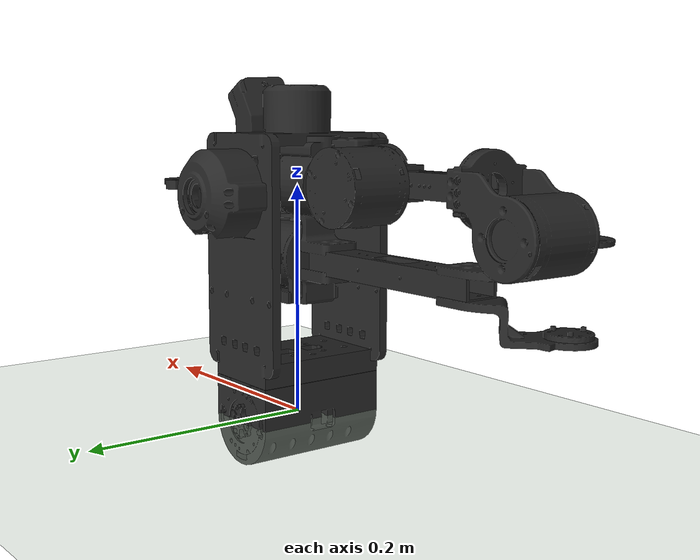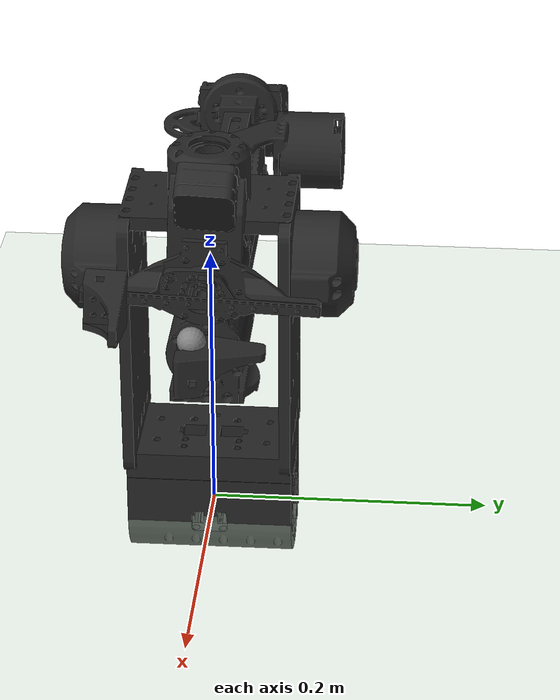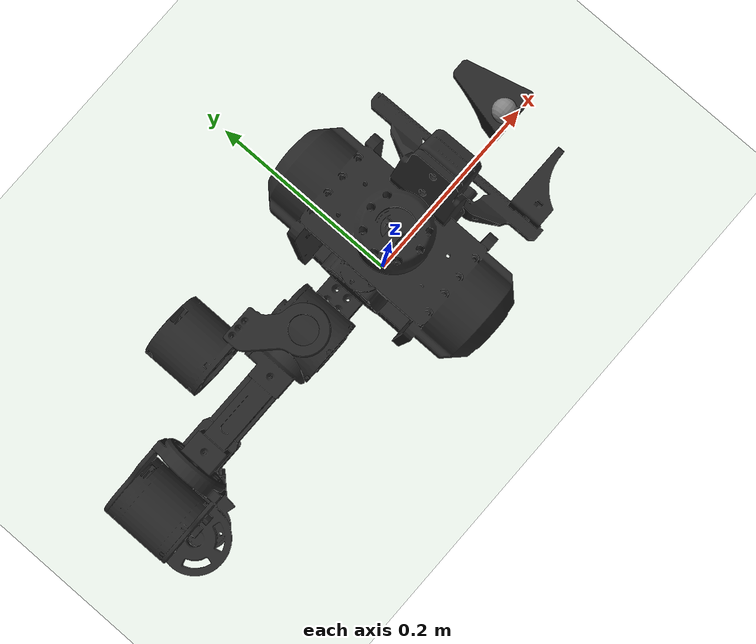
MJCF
<mujoco model="alicia_m_v1_2_follower_arx">
  <compiler angle="radian" meshdir="../../meshes/Alicia_M_v1_2/arx/"/>

  <asset>
    <mesh name="base_link" file="base_link.STL"/>
    <mesh name="link1" file="link1.STL"/>
    <mesh name="link2" file="link2.STL"/>
    <mesh name="link3" file="link3.STL"/>
    <mesh name="link4" file="link4.STL"/>
    <mesh name="link5" file="link5.STL"/>
    <mesh name="link6" file="link6.STL"/>
    <mesh name="link7" file="link7.STL"/>
    <mesh name="link8" file="link8.STL"/>
    <texture builtin="gradient" height="100" rgb1=".4 .5 .6" rgb2="0 0 0" type="skybox" width="100"/>
    <texture builtin="checker" height="100" name="texplane" rgb1="1 1 1" rgb2=".8 .9 1" type="2d" width="100"/>
    <material name="MatPlane" reflectance="0.5" texrepeat="1 1" texture="texplane" texuniform="true"/>
    <material name="white" rgba="1 1 1 1" shininess="0.5" specular="0.1"/>
    <material name="black" rgba="0.15 0.15 0.15 1" shininess="0.2" specular="0.05"/>
    <material name="invisible" rgba="1 1 1 0" shininess="0" specular="0"/>
  </asset>

  <worldbody>
    <geom conaffinity="1" condim="3" contype="1" friction="1 .1 .1" group="2" material="MatPlane" name="floor" pos="0 0 0" rgba="0.8 0.9 0.8 1" size="10 10 0.125" type="plane" />
    <light castshadow="false" cutoff="100" diffuse="1 1 1" dir="-0 0 -1.3" directional="true" exponent="1" pos="0 0 1.3" specular=".1 .1 .1" />
    <body name="base_link" pos="0 0 0">
      <geom type="mesh" contype="0" conaffinity="0" group="1" density="0" rgba="0.15 0.15 0.15 1" mesh="base_link"/>
      <geom type="mesh" rgba="0.15 0.15 0.15 1" mesh="base_link"/>
      <body name="link1" pos="0.0086095 0 0.09725" quat="0.707105 0 0 0.707108">
        <inertial pos="-0.000703329 -0.000725762 0.0322654" quat="0.71212 0.702028 -0.00113627 -0.00635646" mass="0.243059" diaginertia="0.000108906 9.8532e-05 8.6092e-05"/>
        <joint name="joint1" pos="0 0 0" axis="0 0 1" range="-2.7475 2.7475" actuatorfrcrange="-5 5"/>
        <geom type="mesh" contype="0" conaffinity="0" group="1" density="0" rgba="0.15 0.15 0.15 1" mesh="link1"/>
        <geom type="mesh" rgba="0.15 0.15 0.15 1" mesh="link1"/>
        <body name="link2" pos="0.0039812 0 0.0425" quat="0.499998 0.5 -0.500002 -0.5">
          <inertial pos="-0.149854 0.00662694 0.00573138" quat="-0.0302957 0.705012 0.0372839 0.707567" mass="0.370826" diaginertia="0.000607791 0.000563707 0.000110763"/>
          <joint name="joint2" pos="0 0 0" axis="0 0 1" range="-3.14 0" actuatorfrcrange="-5 5"/>
          <geom type="mesh" contype="0" conaffinity="0" group="1" density="0" rgba="0.15 0.15 0.15 1" mesh="link2"/>
          <geom type="mesh" rgba="0.15 0.15 0.15 1" mesh="link2"/>
          <body name="link3" pos="-0.28184 0.040424 0">
            <inertial pos="0.107561 0.0219944 0.00295889" quat="0.090931 0.700094 -0.0940477 0.701965" mass="0.684506" diaginertia="0.000284301 0.000239437 0.000201455"/>
            <joint name="joint3" pos="0 0 0" axis="0 0 -1" range="-3.14 0" actuatorfrcrange="-5 5"/>
            <geom type="mesh" contype="0" conaffinity="0" group="1" density="0" rgba="0.15 0.15 0.15 1" mesh="link3"/>
            <geom type="mesh" rgba="0.15 0.15 0.15 1" mesh="link3"/>
            <body name="link4" pos="0.17842 0.028546 0" quat="1.34924e-11 3.67321e-06 -1 -3.67321e-06">
              <inertial pos="-0.0596853 0.053191 -0.00410587" quat="0.652799 -0.0283414 -0.0243602 0.756609" mass="0.315729" diaginertia="0.000145127 0.000106403 0.000104789"/>
              <joint name="joint4" pos="0 0 0" axis="0 0 -1" range="-1.884 1.57" actuatorfrcrange="-5 5"/>
              <geom type="mesh" contype="0" conaffinity="0" group="1" density="0" rgba="0.15 0.15 0.15 1" mesh="link4"/>
              <geom type="mesh" rgba="0.15 0.15 0.15 1" mesh="link4"/>
              <body name="link5" pos="-0.063 0.034 -0.0036562" quat="0.499998 0.5 -0.5 0.500002">
                <inertial pos="0.000131281 0.0107819 0.0364778" quat="0.501731 0.495426 0.494457 0.508263" mass="0.39271" diaginertia="0.000149868 0.000113486 0.000108731"/>
                <joint name="joint5" pos="0 0 0" axis="0 0 1" range="-1.57 1.57" actuatorfrcrange="-5 5"/>
                <geom type="mesh" contype="0" conaffinity="0" group="1" density="0" rgba="0.15 0.15 0.15 1" mesh="link5"/>
                <geom type="mesh" rgba="0.15 0.15 0.15 1" mesh="link5"/>
                <body name="link6" pos="8.4179e-05 0.029 0.040304" quat="0.707105 -0.707107 0.00102626 -0.00102626">
                  <inertial pos="0.000534443 0.015612 0.0442832" quat="0.00261793 0.70724 0.0307413 0.7063" mass="0.460841" diaginertia="0.000243411 0.000196084 0.000120699"/>
                  <joint name="joint6" pos="0 0 0" axis="0 0 1" range="-2.791 2.791" actuatorfrcrange="-5 5"/>
                  <geom type="mesh" contype="0" conaffinity="0" group="1" density="0" rgba="0.15 0.15 0.15 1" mesh="link6"/>
                  <geom type="mesh" rgba="0.15 0.15 0.15 1" mesh="link6"/>
                  <body name="link7" pos="-0.049964 0.0018931 0.1415" quat="0.00532297 3.6536e-06 -0.999986 -3.6536e-06">
                    <inertial pos="0.0103998 0.000201865 0.0426786" quat="0.98493 0.0144837 -0.171371 -0.0182808" mass="0.0249331" diaginertia="8.74475e-06 6.56798e-06 4.74808e-06"/>
                    <joint name="right_finger" pos="0 0 0" axis="1 0 0" type="slide" range="-0.05 0" actuatorfrcrange="-5 5"/>
                    <geom type="mesh" contype="0" conaffinity="0" group="1" density="0" rgba="0.15 0.15 0.15 1" mesh="link7"/>
                    <geom type="mesh" rgba="0.15 0.15 0.15 1" mesh="link7"/>
                  </body>
                  <body name="link8" pos="0.049964 -0.0018931 0.1415" quat="-3.67315e-06 0.999986 -1.95524e-08 -0.00532297">
                    <inertial pos="0.0113061 0.000201866 0.0424475" quat="0.983046 0.015615 -0.181847 -0.0175326" mass="0.0249331" diaginertia="8.7446e-06 6.5683e-06 4.7479e-06"/>
                    <joint name="left_finger" pos="0 0 0" axis="1 0 0" type="slide" range="-0.05 0" actuatorfrcrange="-5 5"/>
                    <geom type="mesh" contype="0" conaffinity="0" group="1" density="0" rgba="0.15 0.15 0.15 1" mesh="link8"/>
                    <geom type="mesh" rgba="0.15 0.15 0.15 1" mesh="link8"/>
                  </body>
                  <body name="tool0" pos="0 0 0.1375" quat="0.707107 0 0 -0.707107">
                    <inertial pos="0 0 0" quat="1 0 0 0" mass="0.001" diaginertia="1e-08 1e-08 1e-08"/>
                    <geom type="sphere" size="0.005" contype="0" conaffinity="0" group="1" density="0" rgba="0 1 0 1"/>
                    <site name="tool0_site" pos="0 0 0" size="0.01" type="sphere"/>
                  </body>
                </body>
              </body>
            </body>
          </body>
        </body>
      </body>
    </body>
  </worldbody>

  <contact>
    <exclude body1="base_link" body2="link1"/>
    <exclude body1="link1" body2="link2"/>
    <exclude body1="link2" body2="link3"/>
    <exclude body1="link3" body2="link4"/>
    <exclude body1="link2" body2="link4"/>
    <exclude body1="link4" body2="link5"/>
    <exclude body1="link5" body2="link6"/>
    <exclude body1="link6" body2="link7"/>
    <exclude body1="link6" body2="link8"/>
    <exclude body1="link7" body2="link8"/>
  </contact>

</mujoco>
